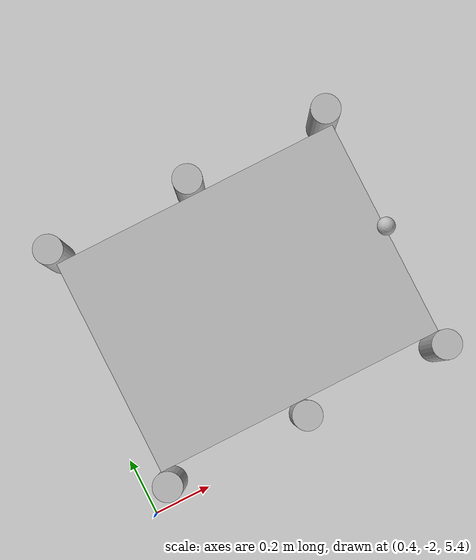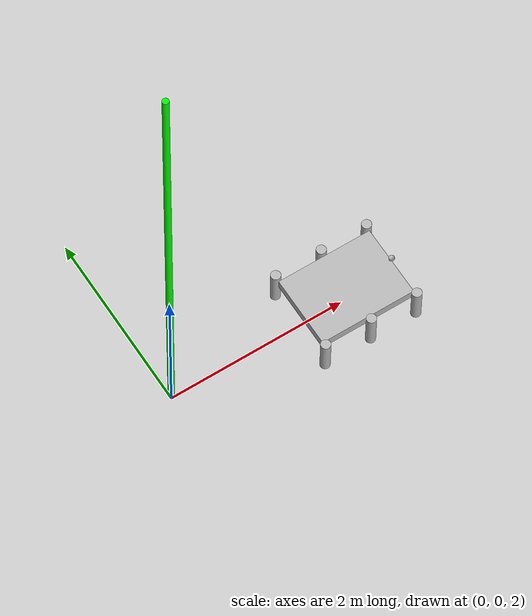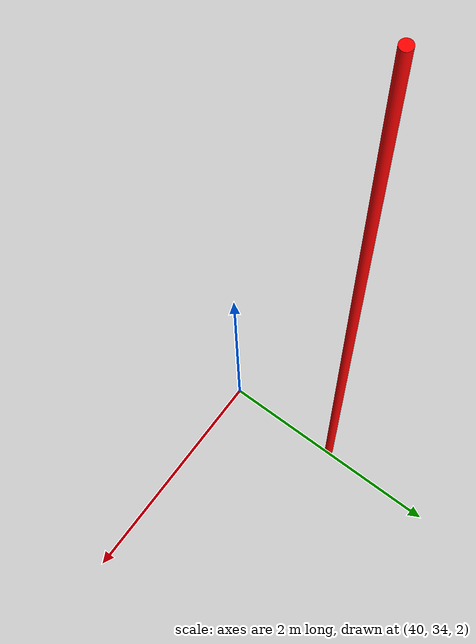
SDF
<sdf version="1.4">
 <world name="default">
  <include><uri>model://ground_plane</uri></include>
  <include><uri>model://sun</uri></include>
  <model name="start_pole">
   <pose>0 0 5 0 0 0</pose>
   <link name="unit_cylinder::link">
    <visual name="visual">
     <geometry><cylinder><radius>0.034805</radius><length>5.81016</length></cylinder></geometry>
     <material><ambient>0 1 0 1</ambient></material>
     <transparency>-0</transparency>
    </visual>
    <collision name="collision">
     <geometry><cylinder><radius>0.034805</radius><length>1.81016</length></cylinder></geometry>
    </collision>
   </link>
   <static>1</static>
  </model>
  <model name="end_pole">
   <pose>40 35 5 0 0 0</pose>
   <link name="unit_cylinder::link">
    <visual name="visual">
     <geometry><cylinder><radius>0.034805</radius><length>5.81016</length></cylinder></geometry>
     <material><ambient>1 0 0 1</ambient></material>
     <transparency>-0</transparency>
    </visual>
    <collision name="collision">
     <geometry><cylinder><radius>0.034805</radius><length>1.81016</length></cylinder></geometry>
    </collision>
   </link>
   <static>1</static>
  </model>
  <model name="car">
   <pose>1 -1.5 5.5 0 0 0</pose>
   <link name="chassis">
    <gravity>0</gravity>
    <pose>0 0 .2 0 0 0</pose>
    <inertial>
     <inertia><ixx>1</ixx><ixy>0</ixy><ixz>0</ixz><iyy>1</iyy><iyz>0</iyz><izz>1</izz></inertia>
     <mass>5.0</mass>
    </inertial>
    <collision name="collision"><geometry><box><size>1 .75 .1</size></box></geometry></collision>
    <visual name="visual"><geometry><box><size>1 .75 .1</size></box></geometry></visual>
   </link>
   <link name="front_indicator">
    <pose>.5 0 0.3 0 0 0</pose>
    <geometry><sphere><radius>.03</radius></sphere></geometry>
    <visual name="visual">
     <geometry><sphere><radius>.03</radius></sphere></geometry>
     <material>Gazebo/Blue</material>
    </visual>
   </link>
   <link name="left_front_wheel">
    <pose>.5 .425 .1 0 0 1.5707</pose>
    <inertial>
     <inertia><ixx>1</ixx><ixy>0</ixy><ixz>0</ixz><iyy>1</iyy><iyz>0</iyz><izz>1</izz></inertia>
     <mass>1.0</mass>
    </inertial>
    <collision name="collision">
     <geometry><cylinder><radius>.05</radius><length>.4</length></cylinder></geometry>
    </collision>
    <visual name="visual">
     <geometry><cylinder><radius>.05</radius><length>.4</length></cylinder></geometry>
    </visual>
   </link>
   <link name="right_front_wheel">
    <pose>.5 -.425 .1 0 0 1.5707</pose>
    <inertial>
     <inertia><ixx>1</ixx><ixy>0</ixy><ixz>0</ixz><iyy>1</iyy><iyz>0</iyz><izz>1</izz></inertia>
     <mass>1.0</mass>
    </inertial>
    <collision name="collision">
     <geometry><cylinder><radius>.05</radius><length>.4</length></cylinder></geometry>
    </collision>
    <visual name="visual">
     <geometry><cylinder><radius>.05</radius><length>.4</length></cylinder></geometry>
    </visual>
   </link>
   <link name="left_middle_wheel">
    <pose>0 .425 .1 0 0 1.5707</pose>
    <inertial>
     <inertia><ixx>1</ixx><ixy>0</ixy><ixz>0</ixz><iyy>1</iyy><iyz>0</iyz><izz>1</izz></inertia>
     <mass>1.0</mass>
    </inertial>
    <collision name="collision">
     <geometry><cylinder><radius>.05</radius><length>.4</length></cylinder></geometry>
    </collision>
    <visual name="visual">
     <geometry><cylinder><radius>.05</radius><length>.4</length></cylinder></geometry>
    </visual>
   </link>
   <link name="right_middle_wheel">
    <pose>0 -.425 .1 0 0 1.5707</pose>
    <inertial>
     <inertia><ixx>1</ixx><ixy>0</ixy><ixz>0</ixz><iyy>1</iyy><iyz>0</iyz><izz>1</izz></inertia>
     <mass>1.0</mass>
    </inertial>
    <collision name="collision">
     <geometry><cylinder><radius>.05</radius><length>.4</length></cylinder></geometry>
    </collision>
    <visual name="visual">
     <geometry><cylinder><radius>.05</radius><length>.4</length></cylinder></geometry>
    </visual>
   </link>
   <link name="left_back_wheel">
    <pose>-.5 .425 .1 0 0 1.5707</pose>
    <inertial>
     <inertia><ixx>1</ixx><ixy>0</ixy><ixz>0</ixz><iyy>1</iyy><iyz>0</iyz><izz>1</izz></inertia>
     <mass>1.0</mass>
    </inertial>
    <collision name="collision">
     <geometry><cylinder><radius>.05</radius><length>.4</length></cylinder></geometry>
    </collision>
    <visual name="visual">
     <geometry><cylinder><radius>.05</radius><length>.4</length></cylinder></geometry>
    </visual>
   </link>
   <link name="right_back_wheel">
    <pose>-.5 -.425 .1 0 0 1.5707</pose>
    <inertial>
     <inertia><ixx>1</ixx><ixy>0</ixy><ixz>0</ixz><iyy>1</iyy><iyz>0</iyz><izz>1</izz></inertia>
     <mass>1.0</mass>
    </inertial>
    <collision name="collision">
     <geometry><cylinder><radius>.05</radius><length>.4</length></cylinder></geometry>
    </collision>
    <visual name="visual">
     <geometry><cylinder><radius>.05</radius><length>.4</length></cylinder></geometry>
    </visual>
   </link>
   <joint type="revolute" name="left_front_wheel_hinge">
    <pose>0 0 .1 0 0 0</pose>
    <child>left_front_wheel</child>
    <parent>chassis</parent>
    <axis><xyz>0 1 0</xyz></axis>
   </joint>
   <joint type="revolute" name="right_back_wheel_hinge">
    <pose>0 0 .1 0 0 0</pose>
    <child>right_back_wheel</child>
    <parent>chassis</parent>
    <axis><xyz>0 1 0</xyz></axis>
   </joint>
   <joint type="revolute" name="left_middle_wheel_hinge">
    <pose>0 0 .1 0 0 0</pose>
    <child>left_middle_wheel</child>
    <parent>chassis</parent>
    <axis><xyz>0 1 0</xyz></axis>
   </joint>
   <joint type="revolute" name="right_middle_wheel_hinge">
    <pose>0 0 .1 0 0 0</pose>
    <child>right_middle_wheel</child>
    <parent>chassis</parent>
    <axis><xyz>0 1 0</xyz></axis>
   </joint>
   <joint type="revolute" name="left_back_wheel_hinge">
    <pose>0 0 .1 0 0 0</pose>
    <child>left_back_wheel</child>
    <parent>chassis</parent>
    <axis><xyz>0 1 0</xyz></axis>
   </joint>
   <joint type="revolute" name="right_front_wheel_hinge">
    <pose>0 0 .1 0 0 0</pose>
    <child>right_front_wheel</child>
    <parent>chassis</parent>
    <axis><xyz>0 1 0</xyz></axis>
   </joint>
   <joint type="fixed" name="indicator_joint"><child>front_indicator</child><parent>chassis</parent></joint>
   <plugin name="legged" filename="liblegged.so"/>
  </model>
 </world>
</sdf>
